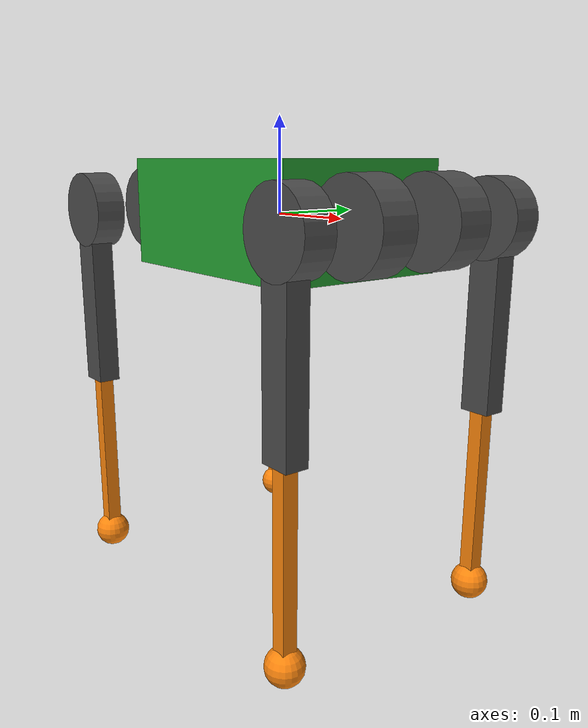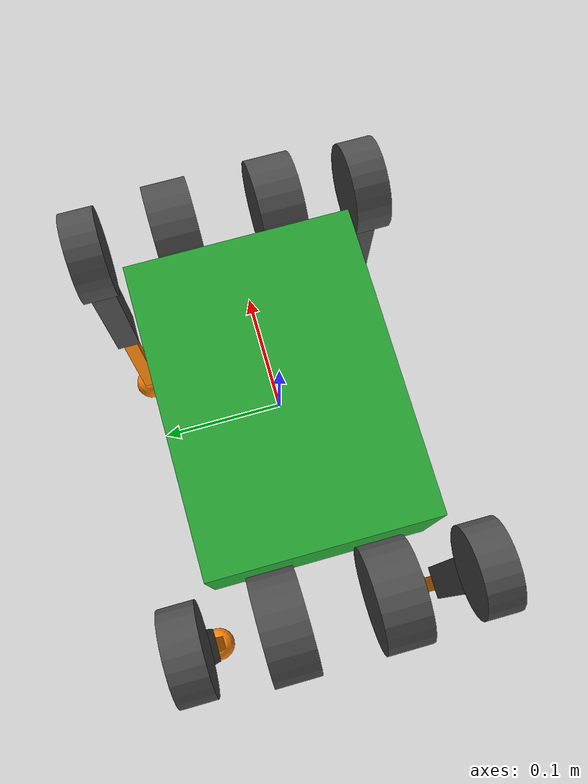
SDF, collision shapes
<sdf version='1.11'>
  <model name='a1'>
    <link name='base'>
      <inertial>
        <pose>0 0.0040993167805365776 -0.00049991668055324103 0 0 0</pose>
        <mass>6.0010000000000003</mass>
        <inertia>
          <ixx>0.015953317057157142</ixx>
          <ixy>-3.6600000000000002e-05</ixy>
          <ixz>-6.1099999999999994e-05</ixz>
          <iyy>0.037899900249958339</iyy>
          <iyz>-2.7497950341609729e-05</iyz>
          <izz>0.045754216807198801</izz>
        </inertia>
      </inertial>
      <collision name='base_fixed_joint_lump__trunk_collision'>
        <pose>0 0 0 0 0 0</pose>
        <geometry>
          <box>
            <size>0.26700000000000002 0.19400000000000001 0.114</size>
          </box>
        </geometry>
        <surface>
          <contact>
            <ode>
              <kp>1000000</kp>
              <kd>1</kd>
            </ode>
          </contact>
          <friction>
            <ode>
              <mu>0.20000000000000001</mu>
              <mu2>0.20000000000000001</mu2>
            </ode>
          </friction>
        </surface>
      </collision>
      <collision name='base_fixed_joint_lump__imu_link_collision_1'>
        <pose>0 0 0 0 0 0</pose>
        <geometry>
          <box>
            <size>0.001 0.001 0.001</size>
          </box>
        </geometry>
        <surface>
          <contact>
            <ode/>
          </contact>
          <friction>
            <ode>
              <mu>0.20000000000000001</mu>
              <mu2>0.20000000000000001</mu2>
            </ode>
          </friction>
        </surface>
      </collision>
      <visual name='base_visual'>
        <pose>0 0 0 0 0 0</pose>
        <geometry>
          <box>
            <size>0.001 0.001 0.001</size>
          </box>
        </geometry>
        <material>
          <script>
            <name>Gazebo/Green</name>
            <uri>file://media/materials/scripts/gazebo.material</uri>
          </script>
        </material>
      </visual>
      <visual name='base_fixed_joint_lump__trunk_visual_1'>
        <pose>0 0 0 0 0 0</pose>
        <geometry>
          <mesh>
            <scale>1 1 1</scale>
            <uri>model://a1_description/meshes/trunk.dae</uri>
          </mesh>
        </geometry>
        <material>
          <diffuse>1 0.529411793 0.0490196086 1</diffuse>
          <ambient>1 0.529411793 0.0490196086 1</ambient>
        </material>
      </visual>
      <visual name='base_fixed_joint_lump__imu_link_visual_2'>
        <pose>0 0 0 0 0 0</pose>
        <geometry>
          <box>
            <size>0.001 0.001 0.001</size>
          </box>
        </geometry>
        <material>
          <script>
            <name>Gazebo/Red</name>
            <uri>file://media/materials/scripts/gazebo.material</uri>
          </script>
          <diffuse>1 0 0 1</diffuse>
          <ambient>1 0 0 1</ambient>
        </material>
      </visual>
      <gravity>true</gravity>
      <gravity>true</gravity>
      <sensor name='imu_sensor' type='imu'>
        <always_on>true</always_on>
        <update_rate>1000</update_rate>
        <visualize>true</visualize>
        <topic>__default_topic__</topic>

        <pose>0 0 0 0 0 0</pose>
        <imu/>
      </sensor>
    </link>
    <joint name='FL_hip_joint' type='revolute'>
      <pose relative_to='base'>0.18049999999999999 0.047 0 0 0 0</pose>
      <parent>base</parent>
      <child>FL_hip</child>
      <axis>
        <xyz>1 0 0</xyz>
        <limit>
          <lower>-0.80285145591700002</lower>
          <upper>0.80285145591700002</upper>
          <effort>33.5</effort>
          <velocity>21</velocity>
        </limit>
        <dynamics>
          <damping>0.01</damping>
          <friction>0.20000000000000001</friction>
          <spring_reference>0</spring_reference>
          <spring_stiffness>0</spring_stiffness>
        </dynamics>
      </axis>
    </joint>
    <link name='FL_hip'>
      <pose relative_to='FL_hip_joint'>0 0 0 0 0 0</pose>
      <inertial>
        <pose>-0.0033110000000000001 0.00063500000000000004 3.1000000000000001e-05 0 0 0</pose>
        <mass>0.69599999999999995</mass>
        <inertia>
          <ixx>0.00046924599999999999</ixx>
          <ixy>-9.4089999999999992e-06</ixy>
          <ixz>-3.4200000000000002e-07</ixz>
          <iyy>0.00080749000000000001</iyy>
          <iyz>-4.6600000000000002e-07</iyz>
          <izz>0.00055292899999999996</izz>
        </inertia>
      </inertial>
      <collision name='FL_hip_collision'>
        <pose>0 0 0 1.57079632679 0 0</pose>
        <geometry>
          <cylinder>
            <length>0.040000000000000001</length>
            <radius>0.045999999999999999</radius>
          </cylinder>
        </geometry>
        <surface>
          <contact>
            <ode/>
          </contact>
          <friction>
            <ode>
              <mu>0.20000000000000001</mu>
              <mu2>0.20000000000000001</mu2>
            </ode>
          </friction>
        </surface>
      </collision>
      <collision name='FL_hip_fixed_joint_lump__FL_thigh_shoulder_collision_1'>
        <pose>0 0.081000000000000003 0 1.57079632679 0 0</pose>
        <geometry>
          <cylinder>
            <length>0.032000000000000001</length>
            <radius>0.041000000000000002</radius>
          </cylinder>
        </geometry>
      </collision>
      <visual name='FL_hip_visual'>
        <pose>0 0 0 0 0 0</pose>
        <geometry>
          <mesh>
            <scale>1 1 1</scale>
            <uri>model://a1_description/meshes/hip.dae</uri>
          </mesh>
        </geometry>
        <material>
          <script>
            <name>Gazebo/DarkGrey</name>
            <uri>file://media/materials/scripts/gazebo.material</uri>
          </script>
          <diffuse>1 0.529411793 0.0490196086 1</diffuse>
          <ambient>1 0.529411793 0.0490196086 1</ambient>
        </material>
      </visual>
    </link>
    <joint name='FL_thigh_joint' type='revolute'>
      <pose relative_to='FL_hip'>0 0.083799999999999999 0 0 0 0</pose>
      <parent>FL_hip</parent>
      <child>FL_thigh</child>
      <axis>
        <xyz>0 1 0</xyz>
        <limit>
          <lower>-1.0471975512</lower>
          <upper>4.1887902047900001</upper>
          <effort>33.5</effort>
          <velocity>21</velocity>
        </limit>
        <dynamics>
          <damping>0.01</damping>
          <friction>0.20000000000000001</friction>
          <spring_reference>0</spring_reference>
          <spring_stiffness>0</spring_stiffness>
        </dynamics>
      </axis>
    </joint>
    <link name='FL_thigh'>
      <pose relative_to='FL_thigh_joint'>0 0 0 0 0 0</pose>
      <inertial>
        <pose>-0.0032369999999999999 -0.022327 -0.027326 0 0 0</pose>
        <mass>1.0129999999999999</mass>
        <inertia>
          <ixx>0.0055290649999999997</ixx>
          <ixy>4.8250000000000004e-06</ixy>
          <ixz>0.00034386900000000001</ixz>
          <iyy>0.0051393389999999997</iyy>
          <iyz>2.2447999999999999e-05</iyz>
          <izz>0.001367788</izz>
        </inertia>
      </inertial>
      <collision name='FL_thigh_collision'>
        <pose>0 0 -0.10000000000000001 0 1.5707963267948966 0</pose>
        <geometry>
          <box>
            <size>0.20000000000000001 0.024500000000000001 0.034000000000000002</size>
          </box>
        </geometry>
        <surface>
          <contact>
            <ode>
              <kp>1000000</kp>
              <kd>1</kd>
            </ode>
          </contact>
          <friction>
            <ode>
              <mu>0.20000000000000001</mu>
              <mu2>0.20000000000000001</mu2>
            </ode>
          </friction>
        </surface>
      </collision>
      <visual name='FL_thigh_visual'>
        <pose>0 0 0 0 0 0</pose>
        <geometry>
          <mesh>
            <scale>1 1 1</scale>
            <uri>model://a1_description/meshes/thigh.dae</uri>
          </mesh>
        </geometry>
        <material>
          <script>
            <name>Gazebo/DarkGrey</name>
            <uri>file://media/materials/scripts/gazebo.material</uri>
          </script>
          <diffuse>1 0.529411793 0.0490196086 1</diffuse>
          <ambient>1 0.529411793 0.0490196086 1</ambient>
        </material>
      </visual>
      <self_collide>true</self_collide>
    </link>
    <joint name='FL_calf_joint' type='revolute'>
      <pose relative_to='FL_thigh'>0 0 -0.20000000000000001 0 0 0</pose>
      <parent>FL_thigh</parent>
      <child>FL_calf</child>
      <axis>
        <xyz>0 1 0</xyz>
        <limit>
          <lower>-2.6965336943299998</lower>
          <upper>0.050000000000000003</upper>
          <effort>33.5</effort>
          <velocity>21</velocity>
        </limit>
        <dynamics>
          <damping>0.01</damping>
          <friction>0.20000000000000001</friction>
          <spring_reference>0</spring_reference>
          <spring_stiffness>0</spring_stiffness>
        </dynamics>
      </axis>
    </joint>
    <link name='FL_calf'>
      <pose relative_to='FL_calf_joint'>0 0 0 0 0 0</pose>
      <inertial>
        <pose>0.0047265929203539822 0 -0.13197525663716811 0 0 0</pose>
        <mass>0.22600000000000001</mass>
        <inertia>
          <ixx>0.003385566451939115</ixx>
          <ixy>0</ixy>
          <ixz>-0.00016742735341238941</ixz>
          <iyy>0.0034034413894656651</iyy>
          <iyz>0</iyz>
          <izz>4.3850937526548672e-05</izz>
        </inertia>
      </inertial>
      <collision name='FL_calf_collision'>
        <pose>0 0 -0.10000000000000001 0 1.5707963267948966 0</pose>
        <geometry>
          <box>
            <size>0.20000000000000001 0.016 0.016</size>
          </box>
        </geometry>
        <surface>
          <contact>
            <ode/>
          </contact>
          <friction>
            <ode>
              <mu>0.20000000000000001</mu>
              <mu2>0.20000000000000001</mu2>
            </ode>
          </friction>
        </surface>
      </collision>
      <collision name='FL_calf_fixed_joint_lump__FL_foot_collision_1'>
        <pose>0 0 -0.20000000000000001 0 0 0</pose>
        <geometry>
          <sphere>
            <radius>0.02</radius>
          </sphere>
        </geometry>
        <surface>
          <contact>
            <ode>
              <kp>1000000</kp>
              <kd>1</kd>
            </ode>
          </contact>
          <friction>
            <ode>
              <mu>0.59999999999999998</mu>
              <mu2>0.59999999999999998</mu2>
            </ode>
          </friction>
        </surface>
      </collision>
      <visual name='FL_calf_visual'>
        <pose>0 0 0 0 0 0</pose>
        <geometry>
          <mesh>
            <scale>1 1 1</scale>
            <uri>model://a1_description/meshes/calf.dae</uri>
          </mesh>
        </geometry>
        <material>
          <diffuse>1 0.529411793 0.0490196086 1</diffuse>
          <ambient>1 0.529411793 0.0490196086 1</ambient>
        </material>
      </visual>
      <visual name='FL_calf_fixed_joint_lump__FL_foot_visual_1'>
        <pose>0 0 -0.20000000000000001 0 0 0</pose>
        <geometry>
          <sphere>
            <radius>0.01</radius>
          </sphere>
        </geometry>

        <material>
          <script>
            <name>Gazebo/DarkGrey</name>
            <uri>file://media/materials/scripts/gazebo.material</uri>
          </script>
          <diffuse>1 0.529411793 0.0490196086 1</diffuse>
          <ambient>1 0.529411793 0.0490196086 1</ambient>
        </material>
      </visual>
      <sensor name='FL_foot_contact' type='contact'>
        <update_rate>100</update_rate>

        <contact>
          <collision>FL_calf_fixed_joint_lump__FL_foot_collision_1</collision>
          <topic>__default_topic__</topic>
        </contact>
      </sensor>
      <self_collide>true</self_collide>
      <self_collide>true</self_collide>
    </link>
    <joint name='FR_hip_joint' type='revolute'>
      <pose relative_to='base'>0.18049999999999999 -0.047 0 0 0 0</pose>
      <parent>base</parent>
      <child>FR_hip</child>
      <axis>
        <xyz>1 0 0</xyz>
        <limit>
          <lower>-0.80285145591700002</lower>
          <upper>0.80285145591700002</upper>
          <effort>33.5</effort>
          <velocity>21</velocity>
        </limit>
        <dynamics>
          <damping>0.01</damping>
          <friction>0.20000000000000001</friction>
          <spring_reference>0</spring_reference>
          <spring_stiffness>0</spring_stiffness>
        </dynamics>
      </axis>
    </joint>
    <link name='FR_hip'>
      <pose relative_to='FR_hip_joint'>0 0 0 0 0 0</pose>
      <inertial>
        <pose>-0.0033110000000000001 -0.00063500000000000004 3.1000000000000001e-05 0 0 0</pose>
        <mass>0.69599999999999995</mass>
        <inertia>
          <ixx>0.00046924599999999999</ixx>
          <ixy>9.4089999999999992e-06</ixy>
          <ixz>-3.4200000000000002e-07</ixz>
          <iyy>0.00080749000000000001</iyy>
          <iyz>4.6600000000000002e-07</iyz>
          <izz>0.00055292899999999996</izz>
        </inertia>
      </inertial>
      <collision name='FR_hip_collision'>
        <pose>0 0 0 1.57079632679 0 0</pose>
        <geometry>
          <cylinder>
            <length>0.040000000000000001</length>
            <radius>0.045999999999999999</radius>
          </cylinder>
        </geometry>
        <surface>
          <contact>
            <ode/>
          </contact>
          <friction>
            <ode>
              <mu>0.20000000000000001</mu>
              <mu2>0.20000000000000001</mu2>
            </ode>
          </friction>
        </surface>
      </collision>
      <collision name='FR_hip_fixed_joint_lump__FR_thigh_shoulder_collision_1'>
        <pose>0 -0.081000000000000003 0 1.57079632679 0 0</pose>
        <geometry>
          <cylinder>
            <length>0.032000000000000001</length>
            <radius>0.041000000000000002</radius>
          </cylinder>
        </geometry>
      </collision>
      <visual name='FR_hip_visual'>
        <pose>0 0 0 -3.1415926535895871 0 0</pose>
        <geometry>
          <mesh>
            <scale>1 1 1</scale>
            <uri>model://a1_description/meshes/hip.dae</uri>
          </mesh>
        </geometry>
        <material>
          <script>
            <name>Gazebo/DarkGrey</name>
            <uri>file://media/materials/scripts/gazebo.material</uri>
          </script>
          <diffuse>1 0.529411793 0.0490196086 1</diffuse>
          <ambient>1 0.529411793 0.0490196086 1</ambient>
        </material>
      </visual>
    </link>
    <joint name='FR_thigh_joint' type='revolute'>
      <pose relative_to='FR_hip'>0 -0.083799999999999999 0 0 0 0</pose>
      <parent>FR_hip</parent>
      <child>FR_thigh</child>
      <axis>
        <xyz>0 1 0</xyz>
        <limit>
          <lower>-1.0471975512</lower>
          <upper>4.1887902047900001</upper>
          <effort>33.5</effort>
          <velocity>21</velocity>
        </limit>
        <dynamics>
          <damping>0.01</damping>
          <friction>0.20000000000000001</friction>
          <spring_reference>0</spring_reference>
          <spring_stiffness>0</spring_stiffness>
        </dynamics>
      </axis>
    </joint>
    <link name='FR_thigh'>
      <pose relative_to='FR_thigh_joint'>0 0 0 0 0 0</pose>
      <inertial>
        <pose>-0.0032369999999999999 0.022327 -0.027326 0 0 0</pose>
        <mass>1.0129999999999999</mass>
        <inertia>
          <ixx>0.0055290649999999997</ixx>
          <ixy>-4.8250000000000004e-06</ixy>
          <ixz>0.00034386900000000001</ixz>
          <iyy>0.0051393389999999997</iyy>
          <iyz>-2.2447999999999999e-05</iyz>
          <izz>0.001367788</izz>
        </inertia>
      </inertial>
      <collision name='FR_thigh_collision'>
        <pose>0 0 -0.10000000000000001 0 1.5707963267948966 0</pose>
        <geometry>
          <box>
            <size>0.20000000000000001 0.024500000000000001 0.034000000000000002</size>
          </box>
        </geometry>
        <surface>
          <contact>
            <ode>
              <kp>1000000</kp>
              <kd>1</kd>
            </ode>
          </contact>
          <friction>
            <ode>
              <mu>0.20000000000000001</mu>
              <mu2>0.20000000000000001</mu2>
            </ode>
          </friction>
        </surface>
      </collision>
      <visual name='FR_thigh_visual'>
        <pose>0 0 0 0 0 0</pose>
        <geometry>
          <mesh>
            <scale>1 1 1</scale>
            <uri>model://a1_description/meshes/thigh_mirror.dae</uri>
          </mesh>
        </geometry>
        <material>
          <script>
            <name>Gazebo/DarkGrey</name>
            <uri>file://media/materials/scripts/gazebo.material</uri>
          </script>
          <diffuse>1 0.529411793 0.0490196086 1</diffuse>
          <ambient>1 0.529411793 0.0490196086 1</ambient>
        </material>
      </visual>
      <self_collide>true</self_collide>
    </link>
    <joint name='FR_calf_joint' type='revolute'>
      <pose relative_to='FR_thigh'>0 0 -0.20000000000000001 0 0 0</pose>
      <parent>FR_thigh</parent>
      <child>FR_calf</child>
      <axis>
        <xyz>0 1 0</xyz>
        <limit>
          <lower>-2.6965336943299998</lower>
          <upper>0.050000000000000003</upper>
          <effort>33.5</effort>
          <velocity>21</velocity>
        </limit>
        <dynamics>
          <damping>0.01</damping>
          <friction>0.20000000000000001</friction>
          <spring_reference>0</spring_reference>
          <spring_stiffness>0</spring_stiffness>
        </dynamics>
      </axis>
    </joint>
    <link name='FR_calf'>
      <pose relative_to='FR_calf_joint'>0 0 0 0 0 0</pose>
      <inertial>
        <pose>0.0047265929203539822 0 -0.13197525663716811 0 0 0</pose>
        <mass>0.22600000000000001</mass>
        <inertia>
          <ixx>0.003385566451939115</ixx>
          <ixy>0</ixy>
          <ixz>-0.00016742735341238941</ixz>
          <iyy>0.0034034413894656651</iyy>
          <iyz>0</iyz>
          <izz>4.3850937526548672e-05</izz>
        </inertia>
      </inertial>
      <collision name='FR_calf_collision'>
        <pose>0 0 -0.10000000000000001 0 1.5707963267948966 0</pose>
        <geometry>
          <box>
            <size>0.20000000000000001 0.016 0.016</size>
          </box>
        </geometry>
        <surface>
          <contact>
            <ode/>
          </contact>
          <friction>
            <ode>
              <mu>0.20000000000000001</mu>
              <mu2>0.20000000000000001</mu2>
            </ode>
          </friction>
        </surface>
      </collision>
      <collision name='FR_calf_fixed_joint_lump__FR_foot_collision_1'>
        <pose>0 0 -0.20000000000000001 0 0 0</pose>
        <geometry>
          <sphere>
            <radius>0.02</radius>
          </sphere>
        </geometry>
        <surface>
          <contact>
            <ode>
              <kp>1000000</kp>
              <kd>1</kd>
            </ode>
          </contact>
          <friction>
            <ode>
              <mu>0.59999999999999998</mu>
              <mu2>0.59999999999999998</mu2>
            </ode>
          </friction>
        </surface>
      </collision>
      <visual name='FR_calf_visual'>
        <pose>0 0 0 0 0 0</pose>
        <geometry>
          <mesh>
            <scale>1 1 1</scale>
            <uri>model://a1_description/meshes/calf.dae</uri>
          </mesh>
        </geometry>
        <material>
          <diffuse>1 0.529411793 0.0490196086 1</diffuse>
          <ambient>1 0.529411793 0.0490196086 1</ambient>
        </material>
      </visual>
      <visual name='FR_calf_fixed_joint_lump__FR_foot_visual_1'>
        <pose>0 0 -0.20000000000000001 0 0 0</pose>
        <geometry>
          <sphere>
            <radius>0.01</radius>
          </sphere>
        </geometry>

        <material>
          <script>
            <name>Gazebo/DarkGrey</name>
            <uri>file://media/materials/scripts/gazebo.material</uri>
          </script>
          <diffuse>1 0.529411793 0.0490196086 1</diffuse>
          <ambient>1 0.529411793 0.0490196086 1</ambient>
        </material>
      </visual>
      <sensor name='FR_foot_contact' type='contact'>
        <update_rate>100</update_rate>

        <contact>
          <collision>FR_calf_fixed_joint_lump__FR_foot_collision_1</collision>
          <topic>__default_topic__</topic>
        </contact>
      </sensor>
      <self_collide>true</self_collide>
      <self_collide>true</self_collide>
    </link>
    <joint name='RL_hip_joint' type='revolute'>
      <pose relative_to='base'>-0.18049999999999999 0.047 0 0 0 0</pose>
      <parent>base</parent>
      <child>RL_hip</child>
      <axis>
        <xyz>1 0 0</xyz>
        <limit>
          <lower>-0.80285145591700002</lower>
          <upper>0.80285145591700002</upper>
          <effort>33.5</effort>
          <velocity>21</velocity>
        </limit>
        <dynamics>
          <damping>0.01</damping>
          <friction>0.20000000000000001</friction>
          <spring_reference>0</spring_reference>
          <spring_stiffness>0</spring_stiffness>
        </dynamics>
      </axis>
    </joint>
    <link name='RL_hip'>
      <pose relative_to='RL_hip_joint'>0 0 0 0 0 0</pose>
      <inertial>
        <pose>0.0033110000000000001 0.00063500000000000004 3.1000000000000001e-05 0 0 0</pose>
        <mass>0.69599999999999995</mass>
        <inertia>
          <ixx>0.00046924599999999999</ixx>
          <ixy>9.4089999999999992e-06</ixy>
          <ixz>3.4200000000000002e-07</ixz>
          <iyy>0.00080749000000000001</iyy>
          <iyz>-4.6600000000000002e-07</iyz>
          <izz>0.00055292899999999996</izz>
        </inertia>
      </inertial>
      <collision name='RL_hip_collision'>
        <pose>0 0 0 1.57079632679 0 0</pose>
        <geometry>
          <cylinder>
            <length>0.040000000000000001</length>
            <radius>0.045999999999999999</radius>
          </cylinder>
        </geometry>
        <surface>
          <contact>
            <ode/>
          </contact>
          <friction>
            <ode>
              <mu>0.20000000000000001</mu>
              <mu2>0.20000000000000001</mu2>
            </ode>
          </friction>
        </surface>
      </collision>
      <collision name='RL_hip_fixed_joint_lump__RL_thigh_shoulder_collision_1'>
        <pose>0 0.081000000000000003 0 1.57079632679 0 0</pose>
        <geometry>
          <cylinder>
            <length>0.032000000000000001</length>
            <radius>0.041000000000000002</radius>
          </cylinder>
        </geometry>
      </collision>
      <visual name='RL_hip_visual'>
        <pose>0 0 0 3.1415926535897931 -2.0682310711021439e-13 3.1415926535897931</pose>
        <geometry>
          <mesh>
            <scale>1 1 1</scale>
            <uri>model://a1_description/meshes/hip.dae</uri>
          </mesh>
        </geometry>
        <material>
          <script>
            <name>Gazebo/DarkGrey</name>
            <uri>file://media/materials/scripts/gazebo.material</uri>
          </script>
          <diffuse>1 0.529411793 0.0490196086 1</diffuse>
          <ambient>1 0.529411793 0.0490196086 1</ambient>
        </material>
      </visual>
    </link>
    <joint name='RL_thigh_joint' type='revolute'>
      <pose relative_to='RL_hip'>0 0.083799999999999999 0 0 0 0</pose>
      <parent>RL_hip</parent>
      <child>RL_thigh</child>
      <axis>
        <xyz>0 1 0</xyz>
        <limit>
          <lower>-1.0471975512</lower>
          <upper>4.1887902047900001</upper>
          <effort>33.5</effort>
          <velocity>21</velocity>
        </limit>
        <dynamics>
          <damping>0.01</damping>
          <friction>0.20000000000000001</friction>
          <spring_reference>0</spring_reference>
          <spring_stiffness>0</spring_stiffness>
        </dynamics>
      </axis>
    </joint>
    <link name='RL_thigh'>
      <pose relative_to='RL_thigh_joint'>0 0 0 0 0 0</pose>
      <inertial>
        <pose>-0.0032369999999999999 -0.022327 -0.027326 0 0 0</pose>
        <mass>1.0129999999999999</mass>
        <inertia>
          <ixx>0.0055290649999999997</ixx>
          <ixy>4.8250000000000004e-06</ixy>
          <ixz>0.00034386900000000001</ixz>
          <iyy>0.0051393389999999997</iyy>
          <iyz>2.2447999999999999e-05</iyz>
          <izz>0.001367788</izz>
        </inertia>
      </inertial>
      <collision name='RL_thigh_collision'>
        <pose>0 0 -0.10000000000000001 0 1.5707963267948966 0</pose>
        <geometry>
          <box>
            <size>0.20000000000000001 0.024500000000000001 0.034000000000000002</size>
          </box>
        </geometry>
        <surface>
          <contact>
            <ode>
              <kp>1000000</kp>
              <kd>1</kd>
            </ode>
          </contact>
          <friction>
            <ode>
              <mu>0.20000000000000001</mu>
              <mu2>0.20000000000000001</mu2>
            </ode>
          </friction>
        </surface>
      </collision>
      <visual name='RL_thigh_visual'>
        <pose>0 0 0 0 0 0</pose>
        <geometry>
          <mesh>
            <scale>1 1 1</scale>
            <uri>model://a1_description/meshes/thigh.dae</uri>
          </mesh>
        </geometry>
        <material>
          <script>
            <name>Gazebo/DarkGrey</name>
            <uri>file://media/materials/scripts/gazebo.material</uri>
          </script>
          <diffuse>1 0.529411793 0.0490196086 1</diffuse>
          <ambient>1 0.529411793 0.0490196086 1</ambient>
        </material>
      </visual>
      <self_collide>true</self_collide>
    </link>
    <joint name='RL_calf_joint' type='revolute'>
      <pose relative_to='RL_thigh'>0 0 -0.20000000000000001 0 0 0</pose>
      <parent>RL_thigh</parent>
      <child>RL_calf</child>
      <axis>
        <xyz>0 1 0</xyz>
        <limit>
          <lower>-2.6965336943299998</lower>
          <upper>0.050000000000000003</upper>
          <effort>33.5</effort>
          <velocity>21</velocity>
        </limit>
        <dynamics>
          <damping>0.01</damping>
          <friction>0.20000000000000001</friction>
          <spring_reference>0</spring_reference>
          <spring_stiffness>0</spring_stiffness>
        </dynamics>
      </axis>
    </joint>
    <link name='RL_calf'>
      <pose relative_to='RL_calf_joint'>0 0 0 0 0 0</pose>
      <inertial>
        <pose>0.0047265929203539822 0 -0.13197525663716811 0 0 0</pose>
        <mass>0.22600000000000001</mass>
        <inertia>
          <ixx>0.003385566451939115</ixx>
          <ixy>0</ixy>
          <ixz>-0.00016742735341238941</ixz>
          <iyy>0.0034034413894656651</iyy>
          <iyz>0</iyz>
          <izz>4.3850937526548672e-05</izz>
        </inertia>
      </inertial>
      <collision name='RL_calf_collision'>
        <pose>0 0 -0.10000000000000001 0 1.5707963267948966 0</pose>
        <geometry>
          <box>
            <size>0.20000000000000001 0.016 0.016</size>
          </box>
        </geometry>
        <surface>
          <contact>
            <ode/>
          </contact>
          <friction>
            <ode>
              <mu>0.20000000000000001</mu>
              <mu2>0.20000000000000001</mu2>
            </ode>
          </friction>
        </surface>
      </collision>
      <collision name='RL_calf_fixed_joint_lump__RL_foot_collision_1'>
        <pose>0 0 -0.20000000000000001 0 0 0</pose>
        <geometry>
          <sphere>
            <radius>0.02</radius>
          </sphere>
        </geometry>
        <surface>
          <contact>
            <ode>
              <kp>1000000</kp>
              <kd>1</kd>
            </ode>
          </contact>
          <friction>
            <ode>
              <mu>0.59999999999999998</mu>
              <mu2>0.59999999999999998</mu2>
            </ode>
          </friction>
        </surface>
      </collision>
      <visual name='RL_calf_visual'>
        <pose>0 0 0 0 0 0</pose>
        <geometry>
          <mesh>
            <scale>1 1 1</scale>
            <uri>model://a1_description/meshes/calf.dae</uri>
          </mesh>
        </geometry>
        <material>
          <diffuse>1 0.529411793 0.0490196086 1</diffuse>
          <ambient>1 0.529411793 0.0490196086 1</ambient>
        </material>
      </visual>
      <visual name='RL_calf_fixed_joint_lump__RL_foot_visual_1'>
        <pose>0 0 -0.20000000000000001 0 0 0</pose>
        <geometry>
          <sphere>
            <radius>0.01</radius>
          </sphere>
        </geometry>

        <material>
          <script>
            <name>Gazebo/DarkGrey</name>
            <uri>file://media/materials/scripts/gazebo.material</uri>
          </script>
          <diffuse>1 0.529411793 0.0490196086 1</diffuse>
          <ambient>1 0.529411793 0.0490196086 1</ambient>
        </material>
      </visual>
      <sensor name='RL_foot_contact' type='contact'>
        <update_rate>100</update_rate>

        <contact>
          <collision>RL_calf_fixed_joint_lump__RL_foot_collision_1</collision>
          <topic>__default_topic__</topic>
        </contact>
      </sensor>
      <self_collide>true</self_collide>
      <self_collide>true</self_collide>
    </link>
    <joint name='RR_hip_joint' type='revolute'>
      <pose relative_to='base'>-0.18049999999999999 -0.047 0 0 0 0</pose>
      <parent>base</parent>
      <child>RR_hip</child>
      <axis>
        <xyz>1 0 0</xyz>
        <limit>
          <lower>-0.80285145591700002</lower>
          <upper>0.80285145591700002</upper>
          <effort>33.5</effort>
          <velocity>21</velocity>
        </limit>
        <dynamics>
          <damping>0.01</damping>
          <friction>0.20000000000000001</friction>
          <spring_reference>0</spring_reference>
          <spring_stiffness>0</spring_stiffness>
        </dynamics>
      </axis>
    </joint>
    <link name='RR_hip'>
      <pose relative_to='RR_hip_joint'>0 0 0 0 0 0</pose>
      <inertial>
        <pose>0.0033110000000000001 -0.00063500000000000004 3.1000000000000001e-05 0 0 0</pose>
        <mass>0.69599999999999995</mass>
        <inertia>
          <ixx>0.00046924599999999999</ixx>
          <ixy>-9.4089999999999992e-06</ixy>
          <ixz>3.4200000000000002e-07</ixz>
          <iyy>0.00080749000000000001</iyy>
          <iyz>4.6600000000000002e-07</iyz>
          <izz>0.00055292899999999996</izz>
        </inertia>
      </inertial>
      <collision name='RR_hip_collision'>
        <pose>0 0 0 1.57079632679 0 0</pose>
        <geometry>
          <cylinder>
            <length>0.040000000000000001</length>
            <radius>0.045999999999999999</radius>
          </cylinder>
        </geometry>
        <surface>
          <contact>
            <ode/>
          </contact>
          <friction>
            <ode>
              <mu>0.20000000000000001</mu>
              <mu2>0.20000000000000001</mu2>
            </ode>
          </friction>
        </surface>
      </collision>
      <collision name='RR_hip_fixed_joint_lump__RR_thigh_shoulder_collision_1'>
        <pose>0 -0.081000000000000003 0 1.57079632679 0 0</pose>
        <geometry>
          <cylinder>
            <length>0.032000000000000001</length>
            <radius>0.041000000000000002</radius>
          </cylinder>
        </geometry>
      </collision>
      <visual name='RR_hip_visual'>
        <pose>0 0 0 2.0682310711021439e-13 -2.0682310711021439e-13 3.1415926535897931</pose>
        <geometry>
          <mesh>
            <scale>1 1 1</scale>
            <uri>model://a1_description/meshes/hip.dae</uri>
          </mesh>
        </geometry>
        <material>
          <script>
            <name>Gazebo/DarkGrey</name>
            <uri>file://media/materials/scripts/gazebo.material</uri>
          </script>
          <diffuse>1 0.529411793 0.0490196086 1</diffuse>
          <ambient>1 0.529411793 0.0490196086 1</ambient>
        </material>
      </visual>
    </link>
    <joint name='RR_thigh_joint' type='revolute'>
      <pose relative_to='RR_hip'>0 -0.083799999999999999 0 0 0 0</pose>
      <parent>RR_hip</parent>
      <child>RR_thigh</child>
      <axis>
        <xyz>0 1 0</xyz>
        <limit>
          <lower>-1.0471975512</lower>
          <upper>4.1887902047900001</upper>
          <effort>33.5</effort>
          <velocity>21</velocity>
        </limit>
        <dynamics>
          <damping>0.01</damping>
          <friction>0.20000000000000001</friction>
          <spring_reference>0</spring_reference>
          <spring_stiffness>0</spring_stiffness>
        </dynamics>
      </axis>
    </joint>
    <link name='RR_thigh'>
      <pose relative_to='RR_thigh_joint'>0 0 0 0 0 0</pose>
      <inertial>
        <pose>-0.0032369999999999999 0.022327 -0.027326 0 0 0</pose>
        <mass>1.0129999999999999</mass>
        <inertia>
          <ixx>0.0055290649999999997</ixx>
          <ixy>-4.8250000000000004e-06</ixy>
          <ixz>0.00034386900000000001</ixz>
          <iyy>0.0051393389999999997</iyy>
          <iyz>-2.2447999999999999e-05</iyz>
          <izz>0.001367788</izz>
        </inertia>
      </inertial>
      <collision name='RR_thigh_collision'>
        <pose>0 0 -0.10000000000000001 0 1.5707963267948966 0</pose>
        <geometry>
          <box>
            <size>0.20000000000000001 0.024500000000000001 0.034000000000000002</size>
          </box>
        </geometry>
        <surface>
          <contact>
            <ode>
              <kp>1000000</kp>
              <kd>1</kd>
            </ode>
          </contact>
          <friction>
            <ode>
              <mu>0.20000000000000001</mu>
              <mu2>0.20000000000000001</mu2>
            </ode>
          </friction>
        </surface>
      </collision>
      <visual name='RR_thigh_visual'>
        <pose>0 0 0 0 0 0</pose>
        <geometry>
          <mesh>
            <scale>1 1 1</scale>
            <uri>model://a1_description/meshes/thigh_mirror.dae</uri>
          </mesh>
        </geometry>
        <material>
          <script>
            <name>Gazebo/DarkGrey</name>
            <uri>file://media/materials/scripts/gazebo.material</uri>
          </script>
          <diffuse>1 0.529411793 0.0490196086 1</diffuse>
          <ambient>1 0.529411793 0.0490196086 1</ambient>
        </material>
      </visual>
      <self_collide>true</self_collide>
    </link>
    <joint name='RR_calf_joint' type='revolute'>
      <pose relative_to='RR_thigh'>0 0 -0.20000000000000001 0 0 0</pose>
      <parent>RR_thigh</parent>
      <child>RR_calf</child>
      <axis>
        <xyz>0 1 0</xyz>
        <limit>
          <lower>-2.6965336943299998</lower>
          <upper>0.050000000000000003</upper>
          <effort>33.5</effort>
          <velocity>21</velocity>
        </limit>
        <dynamics>
          <damping>0.01</damping>
          <friction>0.20000000000000001</friction>
          <spring_reference>0</spring_reference>
          <spring_stiffness>0</spring_stiffness>
        </dynamics>
      </axis>
    </joint>
    <link name='RR_calf'>
      <pose relative_to='RR_calf_joint'>0 0 0 0 0 0</pose>
      <inertial>
        <pose>0.0047265929203539822 0 -0.13197525663716811 0 0 0</pose>
        <mass>0.22600000000000001</mass>
        <inertia>
          <ixx>0.003385566451939115</ixx>
          <ixy>0</ixy>
          <ixz>-0.00016742735341238941</ixz>
          <iyy>0.0034034413894656651</iyy>
          <iyz>0</iyz>
          <izz>4.3850937526548672e-05</izz>
        </inertia>
      </inertial>
      <collision name='RR_calf_collision'>
        <pose>0 0 -0.10000000000000001 0 1.5707963267948966 0</pose>
        <geometry>
          <box>
            <size>0.20000000000000001 0.016 0.016</size>
          </box>
        </geometry>
        <surface>
          <contact>
            <ode/>
          </contact>
          <friction>
            <ode>
              <mu>0.20000000000000001</mu>
              <mu2>0.20000000000000001</mu2>
            </ode>
          </friction>
        </surface>
      </collision>
      <collision name='RR_calf_fixed_joint_lump__RR_foot_collision_1'>
        <pose>0 0 -0.20000000000000001 0 0 0</pose>
        <geometry>
          <sphere>
            <radius>0.02</radius>
          </sphere>
        </geometry>
        <surface>
          <contact>
            <ode>
              <kp>1000000</kp>
              <kd>1</kd>
            </ode>
          </contact>
          <friction>
            <ode>
              <mu>0.59999999999999998</mu>
              <mu2>0.59999999999999998</mu2>
            </ode>
          </friction>
        </surface>
      </collision>
      <visual name='RR_calf_visual'>
        <pose>0 0 0 0 0 0</pose>
        <geometry>
          <mesh>
            <scale>1 1 1</scale>
            <uri>model://a1_description/meshes/calf.dae</uri>
          </mesh>
        </geometry>
        <material>
          <diffuse>1 0.529411793 0.0490196086 1</diffuse>
          <ambient>1 0.529411793 0.0490196086 1</ambient>
        </material>
      </visual>
      <visual name='RR_calf_fixed_joint_lump__RR_foot_visual_1'>
        <pose>0 0 -0.20000000000000001 0 0 0</pose>
        <geometry>
          <sphere>
            <radius>0.01</radius>
          </sphere>
        </geometry>

        <material>
          <script>
            <name>Gazebo/DarkGrey</name>
            <uri>file://media/materials/scripts/gazebo.material</uri>
          </script>
          <diffuse>1 0.529411793 0.0490196086 1</diffuse>
          <ambient>1 0.529411793 0.0490196086 1</ambient>
        </material>
      </visual>
      <sensor name='RR_foot_contact' type='contact'>
        <update_rate>100</update_rate>

        <contact>
          <collision>RR_calf_fixed_joint_lump__RR_foot_collision_1</collision>
          <topic>__default_topic__</topic>
        </contact>
      </sensor>
      <self_collide>true</self_collide>
      <self_collide>true</self_collide>
    </link>

    <frame name='imu_joint' attached_to='trunk'>
      <pose>0 0 0 0 0 0</pose>
    </frame>
    <frame name='imu_link' attached_to='imu_joint'>
      <pose>0 0 0 0 0 0</pose>
    </frame>
    <frame name='floating_base' attached_to='base'>
      <pose>0 0 0 0 0 0</pose>
    </frame>
    <frame name='trunk' attached_to='floating_base'>
      <pose>0 0 0 0 0 0</pose>
    </frame>
    <frame name='FL_hip_fixed' attached_to='FL_hip'>
      <pose>0 0.081000000000000003 0 0 0 0</pose>
    </frame>
    <frame name='FL_thigh_shoulder' attached_to='FL_hip_fixed'>
      <pose>0 0 0 0 0 0</pose>
    </frame>
    <frame name='FL_foot_fixed' attached_to='FL_calf'>
      <pose>0 0 -0.20000000000000001 0 0 0</pose>
    </frame>
    <frame name='FL_foot' attached_to='FL_foot_fixed'>
      <pose>0 0 0 0 0 0</pose>
    </frame>
    <frame name='FR_hip_fixed' attached_to='FR_hip'>
      <pose>0 -0.081000000000000003 0 0 0 0</pose>
    </frame>
    <frame name='FR_thigh_shoulder' attached_to='FR_hip_fixed'>
      <pose>0 0 0 0 0 0</pose>
    </frame>
    <frame name='FR_foot_fixed' attached_to='FR_calf'>
      <pose>0 0 -0.20000000000000001 0 0 0</pose>
    </frame>
    <frame name='FR_foot' attached_to='FR_foot_fixed'>
      <pose>0 0 0 0 0 0</pose>
    </frame>
    <frame name='RL_hip_fixed' attached_to='RL_hip'>
      <pose>0 0.081000000000000003 0 0 0 0</pose>
    </frame>
    <frame name='RL_thigh_shoulder' attached_to='RL_hip_fixed'>
      <pose>0 0 0 0 0 0</pose>
    </frame>
    <frame name='RL_foot_fixed' attached_to='RL_calf'>
      <pose>0 0 -0.20000000000000001 0 0 0</pose>
    </frame>
    <frame name='RL_foot' attached_to='RL_foot_fixed'>
      <pose>0 0 0 0 0 0</pose>
    </frame>
    <frame name='RR_hip_fixed' attached_to='RR_hip'>
      <pose>0 -0.081000000000000003 0 0 0 0</pose>
    </frame>
    <frame name='RR_thigh_shoulder' attached_to='RR_hip_fixed'>
      <pose>0 0 0 0 0 0</pose>
    </frame>
    <frame name='RR_foot_fixed' attached_to='RR_calf'>
      <pose>0 0 -0.20000000000000001 0 0 0</pose>
    </frame>
    <frame name='RR_foot' attached_to='RR_foot_fixed'>
      <pose>0 0 0 0 0 0</pose>
    </frame>

    <plugin filename="gz-sim-apply-joint-force-system" name="gz::sim::systems::ApplyJointForce">
      <joint_name>FL_hip_joint</joint_name>
    </plugin>
    <plugin filename="gz-sim-apply-joint-force-system" name="gz::sim::systems::ApplyJointForce">
      <joint_name>FR_hip_joint</joint_name>
    </plugin>
    <plugin filename="gz-sim-apply-joint-force-system" name="gz::sim::systems::ApplyJointForce">
      <joint_name>RL_hip_joint</joint_name>
    </plugin>
    <plugin filename="gz-sim-apply-joint-force-system" name="gz::sim::systems::ApplyJointForce">
      <joint_name>RR_hip_joint</joint_name>
    </plugin>
    <plugin filename="gz-sim-apply-joint-force-system" name="gz::sim::systems::ApplyJointForce">
      <joint_name>FL_thigh_joint</joint_name>
    </plugin>
    <plugin filename="gz-sim-apply-joint-force-system" name="gz::sim::systems::ApplyJointForce">
      <joint_name>FR_thigh_joint</joint_name>
    </plugin>
    <plugin filename="gz-sim-apply-joint-force-system" name="gz::sim::systems::ApplyJointForce">
      <joint_name>RL_thigh_joint</joint_name>
    </plugin>
    <plugin filename="gz-sim-apply-joint-force-system" name="gz::sim::systems::ApplyJointForce">
      <joint_name>RR_thigh_joint</joint_name>
    </plugin>
    <plugin filename="gz-sim-apply-joint-force-system" name="gz::sim::systems::ApplyJointForce">
      <joint_name>FL_calf_joint</joint_name>
    </plugin>
    <plugin filename="gz-sim-apply-joint-force-system" name="gz::sim::systems::ApplyJointForce">
      <joint_name>FR_calf_joint</joint_name>
    </plugin>
    <plugin filename="gz-sim-apply-joint-force-system" name="gz::sim::systems::ApplyJointForce">
      <joint_name>RL_calf_joint</joint_name>
    </plugin>
    <plugin filename="gz-sim-apply-joint-force-system" name="gz::sim::systems::ApplyJointForce">
      <joint_name>RR_calf_joint</joint_name>
    </plugin>
    <plugin filename="gz-sim-joint-state-publisher-system" name="gz::sim::systems::JointStatePublisher">
        <topic>/model/a1/joint_state</topic>
        <update_frequency>1000</update_frequency>
        <joint_name>FL_hip_joint</joint_name>
        <joint_name>FR_hip_joint</joint_name>
        <joint_name>RL_hip_joint</joint_name>
        <joint_name>RR_hip_joint</joint_name>
        <joint_name>FL_thigh_joint</joint_name>
        <joint_name>FR_thigh_joint</joint_name>
        <joint_name>RL_thigh_joint</joint_name>
        <joint_name>RR_thigh_joint</joint_name>
        <joint_name>FL_calf_joint</joint_name>
        <joint_name>FR_calf_joint</joint_name>
        <joint_name>RL_calf_joint</joint_name>
        <joint_name>RR_calf_joint</joint_name>
    </plugin>
    <plugin filename="gz-sim-odometry-publisher-system" name="gz::sim::systems::OdometryPublisher">
      <odom_frame>odom</odom_frame>
      <robot_base_frame>base</robot_base_frame>
      <odom_publish_frequency>1000</odom_publish_frequency>
      <dimensions>3</dimensions>
    </plugin>
    <plugin filename="gz-sim-pose-publisher-system" name="gz::sim::systems::PosePublisher">
      <publish_link_pose>false</publish_link_pose>
      <use_sensor_names>true</use_sensor_names>
      <publish_collision_pose>false</publish_collision_pose>
      <publish_visual_pose>false</publish_visual_pose>
      <publish_nested_model_pose>true</publish_nested_model_pose>
      <update_frequency>50</update_frequency>
    </plugin>
  </model>
</sdf>
